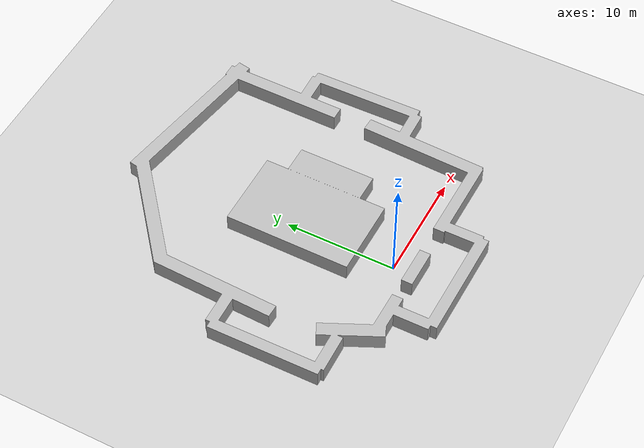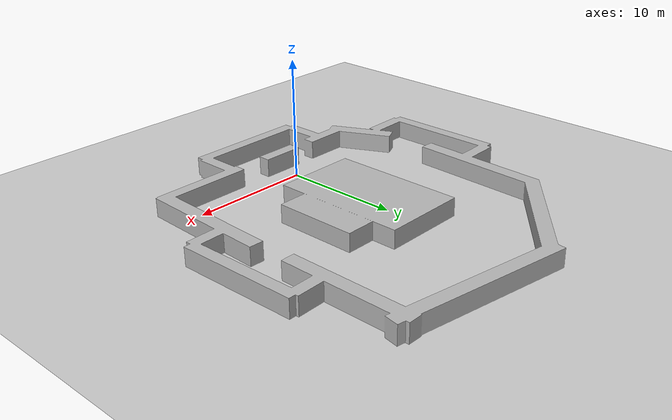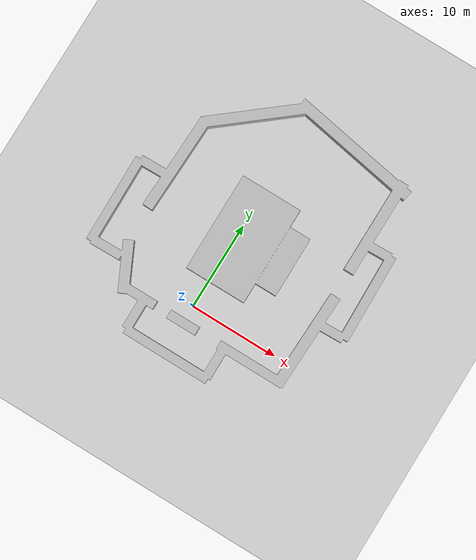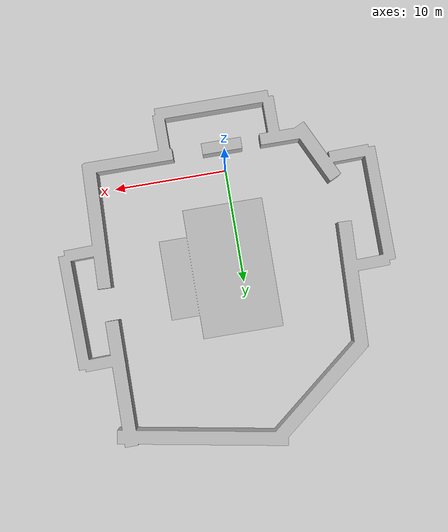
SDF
<?xml version="1.0" ?>
<sdf version="1.4">
  <!-- We use a custom world for the rrbot so that the camera angle is launched correctly -->

  <world name="default">

    <include>
      <uri>model://ground_plane</uri>
    </include>

    <!-- Global light source -->
    <include>
      <uri>model://sun</uri>
    </include>

    <include>
      <uri>model://test_map</uri>
    </include>

  </world>
</sdf>

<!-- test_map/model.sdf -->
<sdf version="1.6">
  <model name="test_map">
    <static>true</static>
    <link name="link">
      <collision name="collision">
        <geometry>
          <mesh>
            <scale>0.5 0.5 0.5</scale>
            <uri>model://test_map/meshes/map.dae</uri>
          </mesh>
        </geometry>
      </collision>
      <visual name="visual">
        <geometry>
          <mesh>
            <scale>0.5 0.5 0.5</scale>
            <uri>model://test_map/meshes/map.dae</uri>
          </mesh>
        </geometry>
      </visual>
    </link>
  </model>
</sdf>
